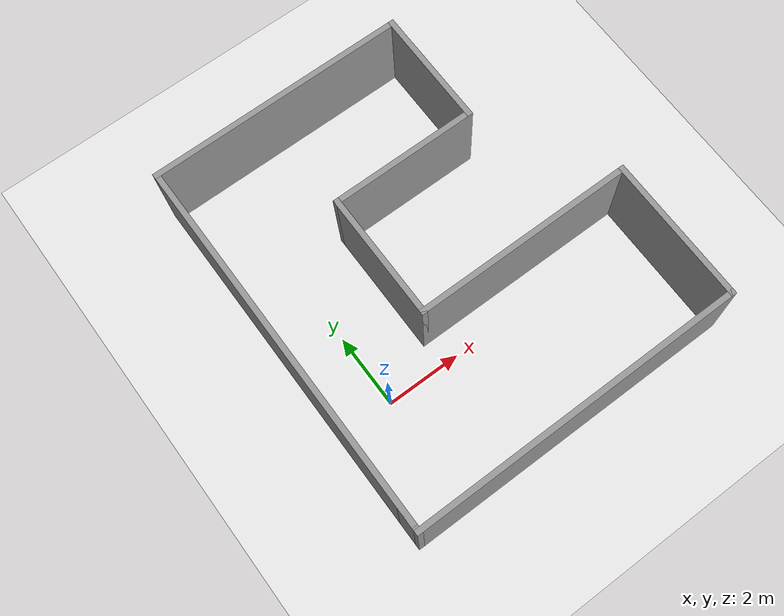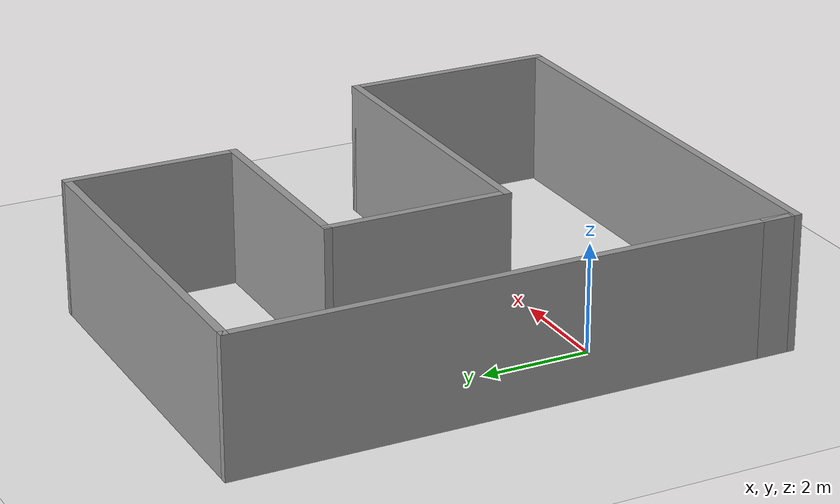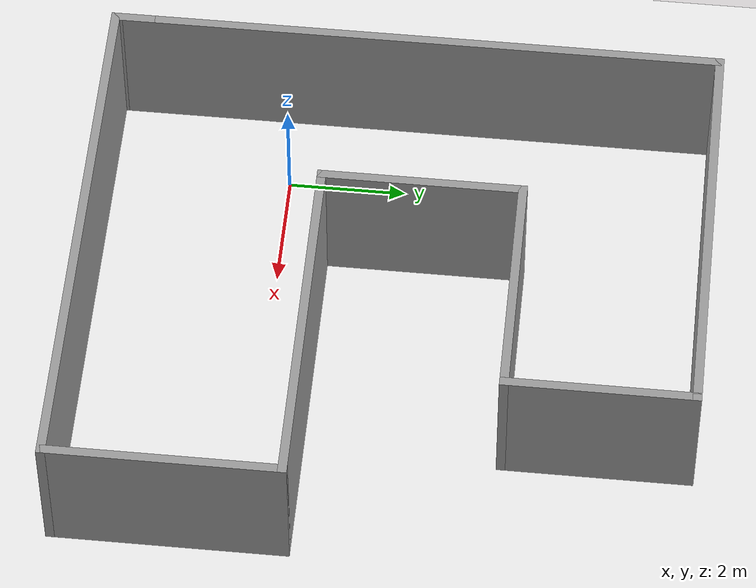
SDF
<sdf version="1.7">
 <world name="default">
  <model name="ground_plane">
   <static>1</static>
   <link name="link">
    <collision name="collision">
     <geometry><plane><normal>0 0 1</normal><size>100 100</size></plane></geometry>
     <surface><friction><ode><mu>100</mu><mu2>50</mu2></ode></friction></surface>
    </collision>
    <visual name="visual">
     <cast_shadows>0</cast_shadows>
     <geometry><plane><normal>0 0 1</normal><size>100 100</size></plane></geometry>
     <material>
      <script><uri>file://media/materials/scripts/gazebo.material</uri><name>Gazebo/White</name></script>
     </material>
    </visual>
   </link>
  </model>
  <light name="sun" type="directional">
   <pose>0 0 10 0 -0 0</pose>
   <diffuse>0.8 0.8 0.8 1</diffuse>
   <specular>0.2 0.2 0.2 1</specular>
   <attenuation>
    <range>1000</range>
    <constant>0.9</constant>
    <linear>0.01</linear>
    <quadratic>0.001</quadratic>
   </attenuation>
   <direction>-0.5 0.1 -0.9</direction>
   <spot><inner_angle>0</inner_angle><outer_angle>0</outer_angle><falloff>0</falloff></spot>
  </light>
  <scene><shadows>0</shadows><ambient>0.4 0.4 0.4 1</ambient><background>0.7 0.7 0.7 1</background></scene>
  <physics type="ode">
   <real_time_update_rate>1000</real_time_update_rate>
   <max_step_size>0.001</max_step_size>
   <real_time_factor>1</real_time_factor>
   <ode>
    <solver>
     <type>quick</type>
     <iters>150</iters>
     <precon_iters>0</precon_iters>
     <sor>1.4</sor>
     <use_dynamic_moi_rescaling>1</use_dynamic_moi_rescaling>
    </solver>
    <constraints>
     <cfm>1e-05</cfm>
     <erp>0.2</erp>
     <contact_max_correcting_vel>2000</contact_max_correcting_vel>
     <contact_surface_layer>0.01</contact_surface_layer>
    </constraints>
   </ode>
  </physics>
  <gravity>0 0 -9.8</gravity>
  <magnetic_field>6e-06 2.3e-05 -4.2e-05</magnetic_field>
  <atmosphere type="adiabatic"/>
  <spherical_coordinates>
   <surface_model>EARTH_WGS84</surface_model>
   <latitude_deg>0</latitude_deg>
   <longitude_deg>0</longitude_deg>
   <elevation>0</elevation>
   <heading_deg>0</heading_deg>
  </spherical_coordinates>
  <model name="wall">
   <pose>2.99471 2.04957 0 0 -0 0</pose>
   <link name="Wall_39">
    <collision name="Wall_39_Collision">
     <geometry><box><size>7 0.15 2.5</size></box></geometry>
     <pose>0 0 1.25 0 -0 0</pose>
    </collision>
    <visual name="Wall_39_Visual">
     <pose>0 0 1.25 0 -0 0</pose>
     <geometry><box><size>7 0.15 2.5</size></box></geometry>
     <material>
      <script><uri>file://media/materials/scripts/gazebo.material</uri><name>Gazebo/Grey</name></script>
      <ambient>1 1 1 1</ambient>
     </material>
     <meta><layer>0</layer></meta>
    </visual>
    <pose>-1 5.15 0 0 -0 0</pose>
   </link>
   <link name="Wall_40">
    <collision name="Wall_40_Collision">
     <geometry><box><size>3.25 0.15 2.5</size></box></geometry>
     <pose>0 0 1.25 0 -0 0</pose>
    </collision>
    <visual name="Wall_40_Visual">
     <pose>0 0 1.25 0 -0 0</pose>
     <geometry><box><size>3.25 0.15 2.5</size></box></geometry>
     <material>
      <script><uri>file://media/materials/scripts/gazebo.material</uri><name>Gazebo/Grey</name></script>
      <ambient>1 1 1 1</ambient>
     </material>
     <meta><layer>0</layer></meta>
    </visual>
    <pose>2.425 3.6 0 0 -0 -1.5708</pose>
   </link>
   <link name="Wall_41">
    <collision name="Wall_41_Collision">
     <geometry><box><size>4 0.15 2.5</size></box></geometry>
     <pose>0 0 1.25 0 -0 0</pose>
    </collision>
    <visual name="Wall_41_Visual">
     <pose>0 0 1.25 0 -0 0</pose>
     <geometry><box><size>4 0.15 2.5</size></box></geometry>
     <material>
      <script><uri>file://media/materials/scripts/gazebo.material</uri><name>Gazebo/Grey</name></script>
      <ambient>1 1 1 1</ambient>
     </material>
     <meta><layer>0</layer></meta>
    </visual>
    <pose>0.5 2.05 0 0 -0 3.14159</pose>
   </link>
   <link name="Wall_42">
    <collision name="Wall_42_Collision">
     <geometry><box><size>3.5 0.15 2.5</size></box></geometry>
     <pose>0 0 1.25 0 -0 0</pose>
    </collision>
    <visual name="Wall_42_Visual">
     <pose>0 0 1.25 0 -0 0</pose>
     <geometry><box><size>3.5 0.15 2.5</size></box></geometry>
     <material>
      <script><uri>file://media/materials/scripts/gazebo.material</uri><name>Gazebo/Grey</name></script>
      <ambient>1 1 1 1</ambient>
     </material>
     <meta><layer>0</layer></meta>
    </visual>
    <pose>-1.425 0.375 0 0 -0 -1.5708</pose>
   </link>
   <link name="Wall_43">
    <collision name="Wall_43_Collision">
     <geometry><box><size>6 0.15 2.5</size></box></geometry>
     <pose>0 0 1.25 0 -0 0</pose>
    </collision>
    <visual name="Wall_43_Visual">
     <pose>0 0 1.25 0 -0 0</pose>
     <geometry><box><size>6 0.15 2.5</size></box></geometry>
     <material>
      <script><uri>file://media/materials/scripts/gazebo.material</uri><name>Gazebo/Grey</name></script>
      <ambient>1 1 1 1</ambient>
     </material>
     <meta><layer>0</layer></meta>
    </visual>
    <pose>1.5 -1.3 0 0 -0 0</pose>
   </link>
   <link name="Wall_44">
    <collision name="Wall_44_Collision">
     <geometry><box><size>4 0.15 2.5</size></box></geometry>
     <pose>0 0 1.25 0 -0 0</pose>
    </collision>
    <visual name="Wall_44_Visual">
     <pose>0 0 1.25 0 -0 0</pose>
     <geometry><box><size>4 0.15 2.5</size></box></geometry>
     <material>
      <script><uri>file://media/materials/scripts/gazebo.material</uri><name>Gazebo/Grey</name></script>
      <ambient>1 1 1 1</ambient>
     </material>
     <meta><layer>0</layer></meta>
    </visual>
    <pose>4.425 -3.225 0 0 -0 -1.5708</pose>
   </link>
   <link name="Wall_45">
    <collision name="Wall_45_Collision">
     <geometry><box><size>9 0.15 2.5</size></box></geometry>
     <pose>0 0 1.25 0 -0 0</pose>
    </collision>
    <visual name="Wall_45_Visual">
     <pose>0 0 1.25 0 -0 0</pose>
     <geometry><box><size>9 0.15 2.5</size></box></geometry>
     <material>
      <script><uri>file://media/materials/scripts/gazebo.material</uri><name>Gazebo/Grey</name></script>
      <ambient>1 1 1 1</ambient>
     </material>
     <meta><layer>0</layer></meta>
    </visual>
    <pose>0 -5.15 0 0 -0 3.14159</pose>
   </link>
   <link name="Wall_46">
    <collision name="Wall_46_Collision">
     <geometry><box><size>0.75 0.15 2.5</size></box></geometry>
     <pose>0 0 1.25 0 -0 0</pose>
    </collision>
    <visual name="Wall_46_Visual">
     <pose>0 0 1.25 0 -0 0</pose>
     <geometry><box><size>0.75 0.15 2.5</size></box></geometry>
     <material>
      <script><uri>file://media/materials/scripts/gazebo.material</uri><name>Gazebo/Grey</name></script>
      <ambient>1 1 1 1</ambient>
     </material>
     <meta><layer>0</layer></meta>
    </visual>
    <pose>-4.425 -4.85 0 0 -0 1.5708</pose>
   </link>
   <link name="Wall_9">
    <collision name="Wall_9_Collision">
     <geometry><box><size>10.25 0.15 2.5</size></box></geometry>
     <pose>0 0 1.25 0 -0 0</pose>
    </collision>
    <visual name="Wall_9_Visual">
     <pose>0 0 1.25 0 -0 0</pose>
     <geometry><box><size>10.25 0.15 2.5</size></box></geometry>
     <material>
      <script><uri>file://media/materials/scripts/gazebo.material</uri><name>Gazebo/Grey</name></script>
      <ambient>1 1 1 1</ambient>
     </material>
     <meta><layer>0</layer></meta>
    </visual>
    <pose>-4.425 0.1 0 0 -0 1.5708</pose>
   </link>
   <static>1</static>
  </model>
 </world>
</sdf>
